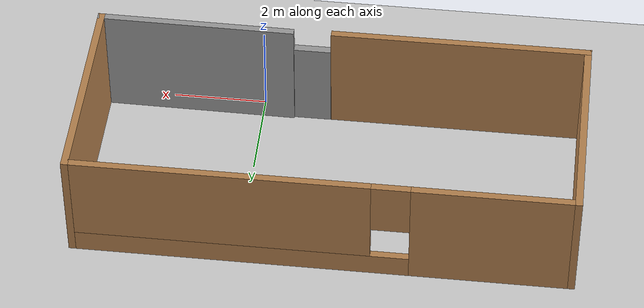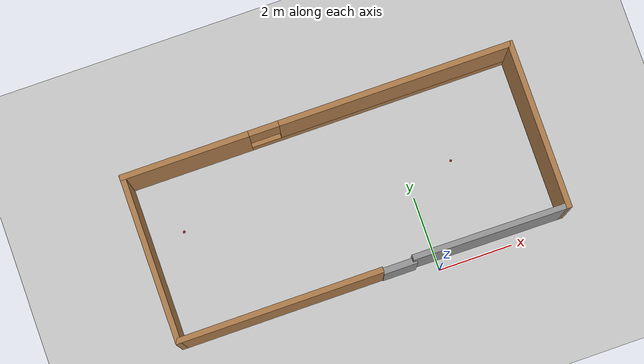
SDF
<sdf version="1.7">
 <world name="default">
  <model name="ground_plane">
   <static>1</static>
   <link name="link">
    <collision name="collision">
     <geometry><plane><normal>0 0 1</normal><size>100 100</size></plane></geometry>
     <surface>
      <contact><collide_bitmask>65535</collide_bitmask></contact>
      <friction><ode><mu>100</mu><mu2>50</mu2></ode></friction>
     </surface>
    </collision>
    <visual name="visual">
     <cast_shadows>0</cast_shadows>
     <geometry><plane><normal>0 0 1</normal><size>100 100</size></plane></geometry>
     <material>
      <script><uri>file://media/materials/scripts/gazebo.material</uri><name>Gazebo/Grey</name></script>
     </material>
    </visual>
   </link>
  </model>
  <light name="sun" type="directional">
   <pose>0 0 10 0 -0 0</pose>
   <diffuse>0.8 0.8 0.8 1</diffuse>
   <specular>0.2 0.2 0.2 1</specular>
   <attenuation>
    <range>1000</range>
    <constant>0.9</constant>
    <linear>0.01</linear>
    <quadratic>0.001</quadratic>
   </attenuation>
   <direction>-0.5 0.1 -0.9</direction>
   <spot><inner_angle>0</inner_angle><outer_angle>0</outer_angle><falloff>0</falloff></spot>
  </light>
  <scene><shadows>0</shadows><ambient>0.4 0.4 0.4 1</ambient><background>0.7 0.7 0.7 1</background></scene>
  <physics type="ode">
   <real_time_update_rate>1000</real_time_update_rate>
   <max_step_size>0.001</max_step_size>
   <real_time_factor>1</real_time_factor>
   <ode>
    <solver>
     <type>quick</type>
     <iters>150</iters>
     <precon_iters>0</precon_iters>
     <sor>1.4</sor>
     <use_dynamic_moi_rescaling>1</use_dynamic_moi_rescaling>
    </solver>
    <constraints>
     <cfm>1e-05</cfm>
     <erp>0.2</erp>
     <contact_max_correcting_vel>2000</contact_max_correcting_vel>
     <contact_surface_layer>0.01</contact_surface_layer>
    </constraints>
   </ode>
  </physics>
  <gravity>0 0 -9.8</gravity>
  <magnetic_field>6e-06 2.3e-05 -4.2e-05</magnetic_field>
  <atmosphere type="adiabatic"/>
  <audio><device>default</device></audio>
  <spherical_coordinates>
   <surface_model>EARTH_WGS84</surface_model>
   <latitude_deg>0</latitude_deg>
   <longitude_deg>0</longitude_deg>
   <elevation>0</elevation>
   <heading_deg>0</heading_deg>
  </spherical_coordinates>
  <model name="kiban1">
   <pose>-1.72739 2.48729 0 0 -0 0</pose>
   <link name="Door_0">
    <collision name="Door_0_Collision">
     <geometry><box><size>0.9 0.17 2</size></box></geometry>
     <pose>0 0 1 0 -0 0</pose>
    </collision>
    <visual name="Door_0_Visual">
     <pose>0 0 1 0 -0 0</pose>
     <geometry><box><size>0.9 0.17 2</size></box></geometry>
     <material>
      <script><uri>file://media/materials/scripts/gazebo.material</uri><name>Gazebo/Grey</name></script>
     </material>
    </visual>
    <pose>0.701026 -2.18255 0 0 -0 0</pose>
   </link>
   <link name="Wall_0">
    <collision name="Wall_0_Collision">
     <geometry><box><size>5.5 0.15 2.5</size></box></geometry>
     <pose>0 0 1.25 0 -0 0</pose>
    </collision>
    <visual name="Wall_0_Visual">
     <pose>0 0 1.25 0 -0 0</pose>
     <geometry><box><size>5.5 0.15 2.5</size></box></geometry>
     <material>
      <script><uri>file://media/materials/scripts/gazebo.material</uri><name>Gazebo/Wood</name></script>
      <ambient>1 1 1 1</ambient>
     </material>
     <meta><layer>0</layer></meta>
    </visual>
    <pose>-2.50035 -2.17465 0 0 -0 3.14159</pose>
   </link>
   <link name="Wall_1">
    <collision name="Wall_1_Collision">
     <geometry><box><size>4.5 0.15 2.5</size></box></geometry>
     <pose>0 0 1.25 0 -0 0</pose>
    </collision>
    <visual name="Wall_1_Visual">
     <pose>0 0 1.25 0 -0 0</pose>
     <geometry><box><size>4.5 0.15 2.5</size></box></geometry>
     <material>
      <script><uri>file://media/materials/scripts/gazebo.material</uri><name>Gazebo/Wood</name></script>
      <ambient>1 1 1 1</ambient>
     </material>
     <meta><layer>0</layer></meta>
    </visual>
    <pose>-5.17535 0.000353 0 0 -0 1.5708</pose>
   </link>
   <link name="Wall_2">
    <pose>-0.000353 2.17535 0 0 -0 0</pose>
    <visual name="Wall_2_Visual_0">
     <pose>-3.53832 0 1.25 0 -0 0</pose>
     <geometry><box><size>3.42336 0.15 2.5</size></box></geometry>
     <material>
      <script><uri>file://media/materials/scripts/gazebo.material</uri><name>Gazebo/Wood</name></script>
      <ambient>1 1 1 1</ambient>
     </material>
     <meta><layer>0</layer></meta>
    </visual>
    <collision name="Wall_2_Collision_0">
     <geometry><box><size>3.42336 0.15 2.5</size></box></geometry>
     <pose>-3.53832 0 1.25 0 -0 0</pose>
    </collision>
    <visual name="Wall_2_Visual_1">
     <pose>1.71168 0 0.25 0 -0 0</pose>
     <geometry><box><size>7.07664 0.15 0.5</size></box></geometry>
     <material>
      <script><uri>file://media/materials/scripts/gazebo.material</uri><name>Gazebo/Wood</name></script>
      <ambient>1 1 1 1</ambient>
     </material>
     <meta><layer>0</layer></meta>
    </visual>
    <collision name="Wall_2_Collision_1">
     <geometry><box><size>7.07664 0.15 0.5</size></box></geometry>
     <pose>1.71168 0 0.25 0 -0 0</pose>
    </collision>
    <visual name="Wall_2_Visual_2">
     <pose>2.11168 0 1.5 0 -0 0</pose>
     <geometry><box><size>6.27664 0.15 2</size></box></geometry>
     <material>
      <script><uri>file://media/materials/scripts/gazebo.material</uri><name>Gazebo/Wood</name></script>
      <ambient>1 1 1 1</ambient>
     </material>
     <meta><layer>0</layer></meta>
    </visual>
    <collision name="Wall_2_Collision_2">
     <geometry><box><size>6.27664 0.15 2</size></box></geometry>
     <pose>2.11168 0 1.5 0 -0 0</pose>
    </collision>
    <visual name="Wall_2_Visual_3">
     <pose>-1.42664 0 1.9 0 -0 0</pose>
     <geometry><box><size>0.8 0.15 1.2</size></box></geometry>
     <material>
      <script><uri>file://media/materials/scripts/gazebo.material</uri><name>Gazebo/Wood</name></script>
      <ambient>1 1 1 1</ambient>
     </material>
     <meta><layer>0</layer></meta>
    </visual>
    <collision name="Wall_2_Collision_3">
     <geometry><box><size>0.8 0.15 1.2</size></box></geometry>
     <pose>-1.42664 0 1.9 0 -0 0</pose>
    </collision>
   </link>
   <link name="Wall_3">
    <collision name="Wall_3_Collision">
     <geometry><box><size>4.5 0.15 2.5</size></box></geometry>
     <pose>0 0 1.25 0 -0 0</pose>
    </collision>
    <visual name="Wall_3_Visual">
     <pose>0 0 1.25 0 -0 0</pose>
     <geometry><box><size>4.5 0.15 2.5</size></box></geometry>
     <material>
      <script><uri>file://media/materials/scripts/gazebo.material</uri><name>Gazebo/Wood</name></script>
      <ambient>1 1 1 1</ambient>
     </material>
     <meta><layer>0</layer></meta>
    </visual>
    <pose>5.17465 0.000353 0 0 -0 -1.5708</pose>
   </link>
   <link name="Wall_6">
    <collision name="Wall_6_Collision">
     <geometry><box><size>4.20745 0.15 2.5</size></box></geometry>
     <pose>0 0 1.25 0 -0 0</pose>
    </collision>
    <visual name="Wall_6_Visual">
     <pose>0 0 1.25 0 -0 0</pose>
     <geometry><box><size>4.20745 0.15 2.5</size></box></geometry>
     <material>
      <script><uri>file://media/materials/scripts/gazebo.material</uri><name>Gazebo/Grey</name></script>
      <ambient>1 1 1 1</ambient>
     </material>
     <meta><layer>0</layer></meta>
    </visual>
    <pose>3.14601 -2.15547 0 0 -0 -0.009454</pose>
   </link>
   <static>1</static>
  </model>
  <model name="orange_ball">
   <link name="ball">
    <inertial>
     <mass>0.03</mass>
     <inertia>
      <ixx>1.268e-05</ixx>
      <iyy>1.268e-05</iyy>
      <izz>1.268e-05</izz>
      <ixy>0</ixy>
      <ixz>0</ixz>
      <iyz>0</iyz>
     </inertia>
    </inertial>
    <visual name="visual">
     <geometry><sphere><radius>0.0325</radius></sphere></geometry>
     <material>
      <script><uri>file://media/materials/scripts/gazebo.material</uri><name>Gazebo/RedBright</name></script>
      <shader type="pixel"><normal_map>__default__</normal_map></shader>
     </material>
    </visual>
    <collision name="collision">
     <geometry><sphere><radius>0.0325</radius></sphere></geometry>
     <surface>
      <friction>
       <ode><mu>1</mu><mu2>1</mu2><fdir1>0 0 0</fdir1><slip1>0</slip1><slip2>0</slip2></ode>
       <torsional>
        <coefficient>1</coefficient>
        <patch_radius>0</patch_radius>
        <surface_radius>0</surface_radius>
        <use_patch_radius>1</use_patch_radius>
        <ode><slip>0</slip></ode>
       </torsional>
      </friction>
      <bounce><restitution_coefficient>0</restitution_coefficient><threshold>1e+06</threshold></bounce>
      <contact>
       <collide_without_contact>0</collide_without_contact>
       <collide_without_contact_bitmask>1</collide_without_contact_bitmask>
       <collide_bitmask>1</collide_bitmask>
       <ode>
        <soft_cfm>0</soft_cfm>
        <soft_erp>0.2</soft_erp>
        <kp>1e+13</kp>
        <kd>1</kd>
        <max_vel>0.01</max_vel>
        <min_depth>0</min_depth>
       </ode>
       <bullet>
        <split_impulse>1</split_impulse>
        <split_impulse_penetration_threshold>-0.01</split_impulse_penetration_threshold>
        <soft_cfm>0</soft_cfm>
        <soft_erp>0.2</soft_erp>
        <kp>1e+13</kp>
        <kd>1</kd>
       </bullet>
      </contact>
     </surface>
    </collision>
   </link>
   <static>0</static>
   <pose>-5.95975 3.13806 0.0325 0 -0 0</pose>
  </model>
  <model name="orange_ball_0">
   <link name="ball">
    <inertial>
     <mass>0.03</mass>
     <inertia>
      <ixx>1.268e-05</ixx>
      <iyy>1.268e-05</iyy>
      <izz>1.268e-05</izz>
      <ixy>0</ixy>
      <ixz>0</ixz>
      <iyz>0</iyz>
     </inertia>
    </inertial>
    <visual name="visual">
     <geometry><sphere><radius>0.0325</radius></sphere></geometry>
     <material>
      <script><uri>file://media/materials/scripts/gazebo.material</uri><name>Gazebo/RedBright</name></script>
      <shader type="pixel"><normal_map>__default__</normal_map></shader>
     </material>
    </visual>
    <collision name="collision">
     <geometry><sphere><radius>0.0325</radius></sphere></geometry>
     <surface>
      <friction>
       <ode><mu>1</mu><mu2>1</mu2><fdir1>0 0 0</fdir1><slip1>0</slip1><slip2>0</slip2></ode>
       <torsional>
        <coefficient>1</coefficient>
        <patch_radius>0</patch_radius>
        <surface_radius>0</surface_radius>
        <use_patch_radius>1</use_patch_radius>
        <ode><slip>0</slip></ode>
       </torsional>
      </friction>
      <bounce><restitution_coefficient>0</restitution_coefficient><threshold>1e+06</threshold></bounce>
      <contact>
       <collide_without_contact>0</collide_without_contact>
       <collide_without_contact_bitmask>1</collide_without_contact_bitmask>
       <collide_bitmask>1</collide_bitmask>
       <ode>
        <soft_cfm>0</soft_cfm>
        <soft_erp>0.2</soft_erp>
        <kp>1e+13</kp>
        <kd>1</kd>
        <max_vel>0.01</max_vel>
        <min_depth>0</min_depth>
       </ode>
       <bullet>
        <split_impulse>1</split_impulse>
        <split_impulse_penetration_threshold>-0.01</split_impulse_penetration_threshold>
        <soft_cfm>0</soft_cfm>
        <soft_erp>0.2</soft_erp>
        <kp>1e+13</kp>
        <kd>1</kd>
       </bullet>
      </contact>
     </surface>
    </collision>
   </link>
   <static>0</static>
   <pose>1.24387 2.62226 0.0325 0 -0 0</pose>
  </model>
 </world>
</sdf>
